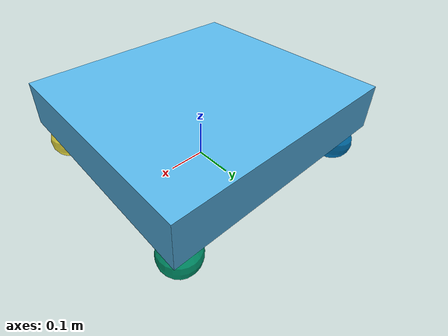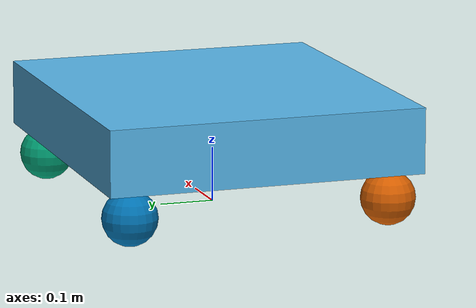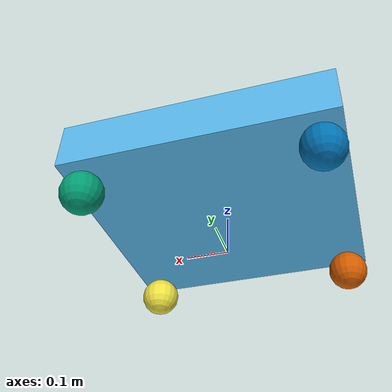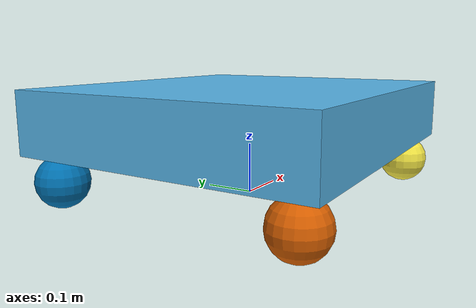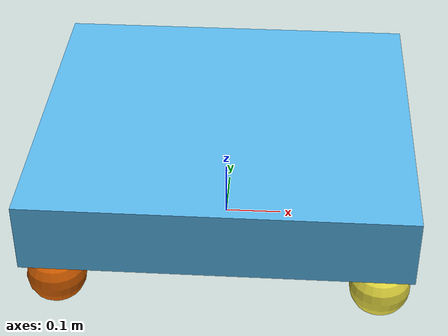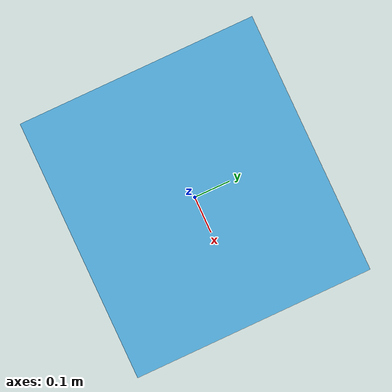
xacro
<?xml version='1.0'?>
<robot xmlns:xacro="http://www.ros.org/wiki/xacro" name="freddy">
    <xacro:arg name="use_gpu_2d_laser" default="false" />

    <!-- Robot prefix -->
    <xacro:arg name="tf_prefix" default="" />

    <xacro:include filename="$(find freddy_base_description)/urdf/common.xacro" />
    <xacro:include filename="$(find freddy_base_description)/urdf/freddy_base_mecanum_gz.urdf.xacro" />

    <link name="base_link"/>

    <xacro:freddy_base name="freddy_base" parent="base_link"
        use_gpu_2d_laser="$(arg use_gpu_2d_laser)">
        <origin xyz="0.0 0.0 0.0" rpy="0.0 0.0 0.0" />
    </xacro:freddy_base>

</robot>

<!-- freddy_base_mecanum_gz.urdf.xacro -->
<robot xmlns:xacro="http://www.ros.org/wiki/xacro">

    <!-- simplified box collision geometry for base -->
    <xacro:property name="robot_name" value="freddy"/>

    <xacro:property name="base_size_x" value="0.635"/>
    <xacro:property name="base_size_y" value="0.582"/>
    <xacro:property name="base_size_z_bottom" value="0.12"/>
    <xacro:property name="wheel_slit_height" value="0.1"/>
    <xacro:property name="laser_slit_height" value="0.05"/>
    <xacro:property name="base_size_z_top" value="0.1"/>
    <xacro:property name="base_size_z" value="${base_size_z_bottom + laser_slit_height + base_size_z_top}"/>
    <xacro:property name="base_mass" value="40.0"/>

    <xacro:include filename="$(find freddy_base_description)/urdf/kelo_wheel_mecanum_gz.urdf.xacro" />

    <xacro:macro name="freddy_base" params="name parent *origin use_gpu_2d_laser:=true">
        <!-- BASE -->
        <link name="${name}_link">
            <visual>
                <origin xyz="0 0 ${wheel_slit_height + base_size_z_bottom/2}" rpy="0 0 0"/>
                <geometry>
                    <box size="${base_size_x} ${base_size_y} ${base_size_z_bottom}" />
                </geometry>
            </visual>

            <!-- base bottom collisions -->
            <collision>
                <origin xyz="0 0 ${wheel_slit_height + base_size_z_bottom/2}" rpy="0 0 0.0"/>
                <geometry>
                    <box size="${base_size_x} ${base_size_y} ${base_size_z_bottom}" />
                </geometry>
            </collision>

            <!-- base top collisions -->
            <collision>
                <origin xyz="0 0 ${wheel_slit_height + base_size_z_bottom + laser_slit_height + base_size_z_top/2}" rpy="0 0 0.0"/>
                <geometry>
                    <box size="${base_size_x} ${base_size_y} ${base_size_z_top}" />
                </geometry>
            </collision>

            <xacro:cuboid_inertia mass="${base_mass}" length="${base_size_x}"
                                  breadth="${base_size_y}" height="${base_size_z}"/>
        </link>

        <joint name="${name}_joint" type="fixed">
            <xacro:insert_block name="origin" />
            <parent link="${parent}"/>
            <child link="${name}_link" />
        </joint>

        <!-- WHEELS -->
        <xacro:kelo_wheel name="left_front_wheel" parent="${name}_link" fdir1="1 1 0" >
            <origin xyz="${base_size_x*0.5 - wheel_radius}
                         ${base_size_y*0.5 - wheel_radius}
                         ${wheel_radius}"
                    rpy="0 0 0"/>
        </xacro:kelo_wheel>
        <xacro:kelo_wheel name="right_front_wheel" parent="${name}_link" fdir1="1 1 0" >
            <origin xyz="${base_size_x*0.5 - wheel_radius}
                         ${-(base_size_y*0.5 - wheel_radius)}
                         ${wheel_radius}"
                    rpy="0 0 0"/>
        </xacro:kelo_wheel>
        <xacro:kelo_wheel name="left_back_wheel" parent="${name}_link" fdir1="1 -1 0" >
            <origin xyz="${-(base_size_x*0.5 - wheel_radius)}
                         ${base_size_y*0.5 - wheel_radius}
                         ${wheel_radius}"
                    rpy="0 0 0"/>
        </xacro:kelo_wheel>
        <xacro:kelo_wheel name="right_back_wheel" parent="${name}_link" fdir1="1 -1 0" >
            <origin xyz="${-(base_size_x*0.5 - wheel_radius)}
                         ${-(base_size_y*0.5 - wheel_radius)}
                         ${wheel_radius}"
                    rpy="0 0 0"/>
        </xacro:kelo_wheel>

        <gazebo>
        <plugin filename="gz-sim-mecanum-drive-system"
                name="gz::sim::systems::MecanumDrive">
            <front_left_joint>left_front_wheel_joint</front_left_joint>
            <front_right_joint>right_front_wheel_joint</front_right_joint>
            <back_left_joint>left_back_wheel_joint</back_left_joint>
            <back_right_joint>right_back_wheel_joint</back_right_joint>
            <wheel_separation>${base_size_x - 2*wheel_radius}</wheel_separation>
            <wheelbase>${base_size_y - 2*wheel_radius}</wheelbase>
            <wheel_radius>${wheel_radius}</wheel_radius>
            <min_acceleration>-5</min_acceleration>
            <max_acceleration>5</max_acceleration>
        </plugin>
        </gazebo>

    </xacro:macro>
</robot>

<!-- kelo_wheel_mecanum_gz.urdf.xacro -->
<robot xmlns:xacro="http://www.ros.org/wiki/xacro">

    <xacro:property name="wheel_radius" value="0.05" />
    <xacro:property name="wheel_mass" value="1.0" />
    <xacro:property name="inertia_wheels" value="0.001" />

    <xacro:include filename="$(find freddy_base_description)/urdf/common.xacro" />

    <xacro:macro name="kelo_wheel" params="name parent *origin fdir1">
        <link name="${name}_link">
            <visual>
                <geometry>
                    <sphere radius="${wheel_radius}" />
                </geometry>
            </visual>
            <collision>
                <geometry>
                    <sphere radius="${wheel_radius}" />
                </geometry>
                <surface>
                    <friction>
                        <ode>
                            <mu>1.0</mu>
                            <mu2>0.0</mu2>
                            <fdir1>${fdir1}</fdir1>
                        </ode>
                    </friction>
                </surface>
            </collision>
            <xacro:sphere_inertia mass="${wheel_mass}" radius="${wheel_radius}" />
        </link>
        <joint name="${name}_joint" type="revolute">
            <xacro:insert_block name="origin" />
            <parent link="${parent}"/>
            <child link="${name}_link"/>
            <!-- Joint axis and limits (revolute) -->
            <axis xyz="0 1 0" />
            <limit effort="1000" velocity="100" lower="-1.79769e+308" upper="1.79769e+308" />
            <dynamics damping="0.7"/>
            <!-- Joint axis and limits  -->
        </joint>

    </xacro:macro>

</robot>
